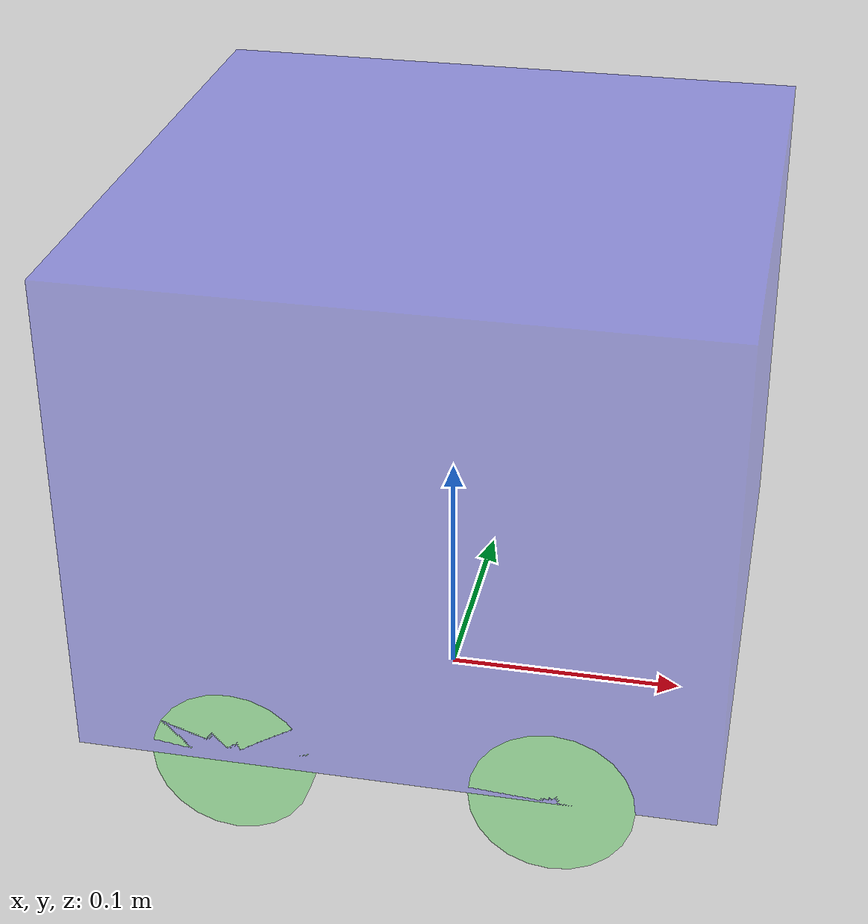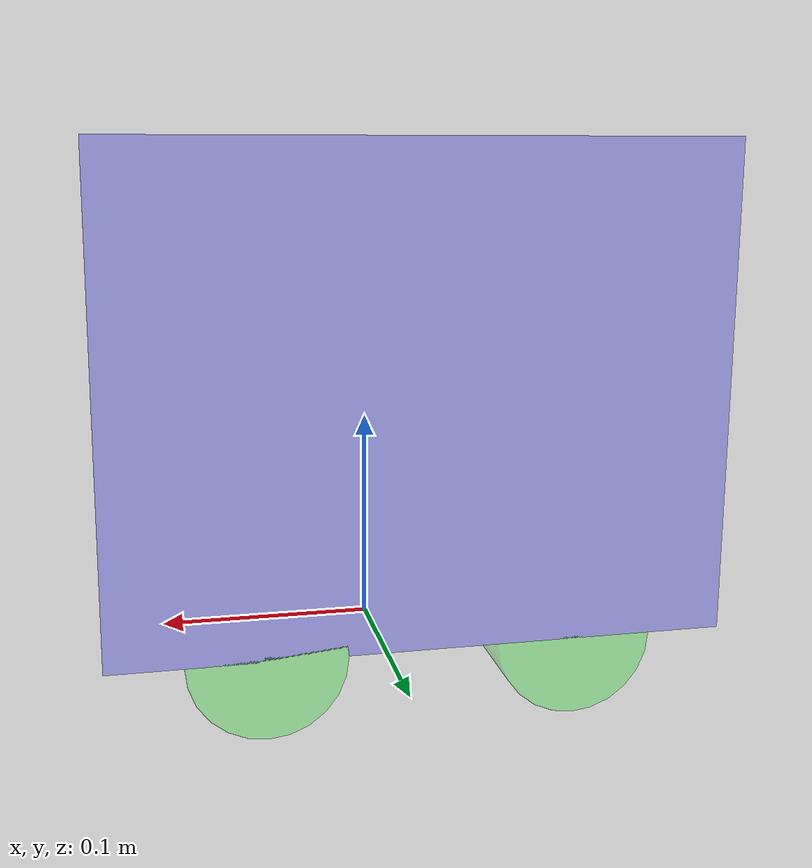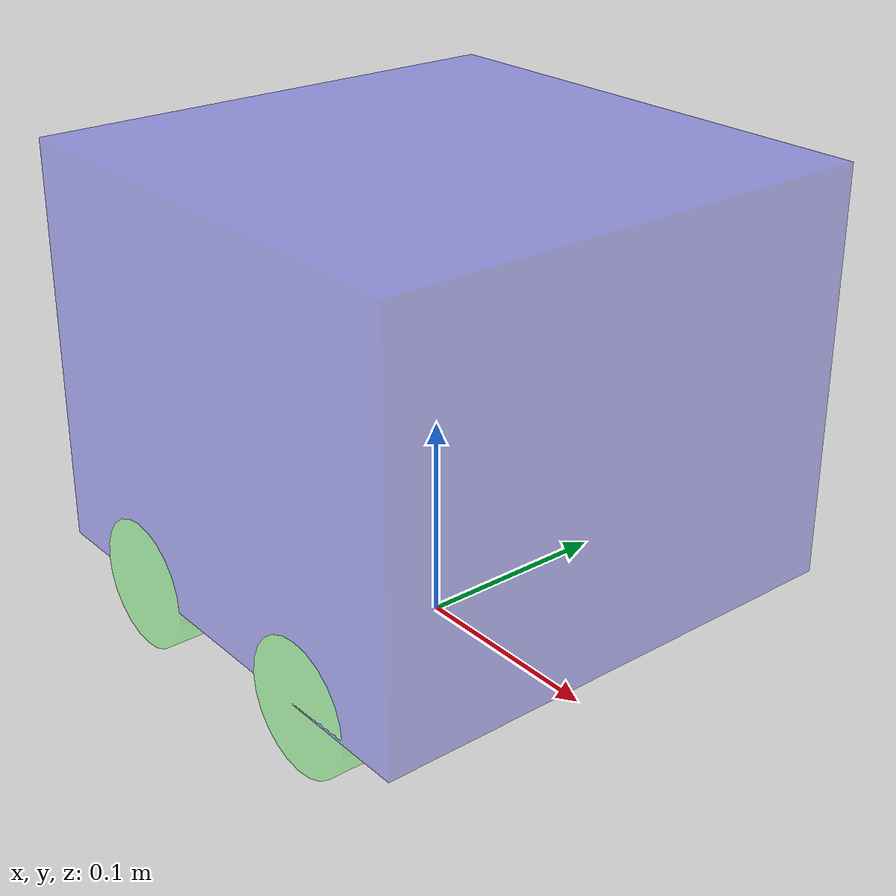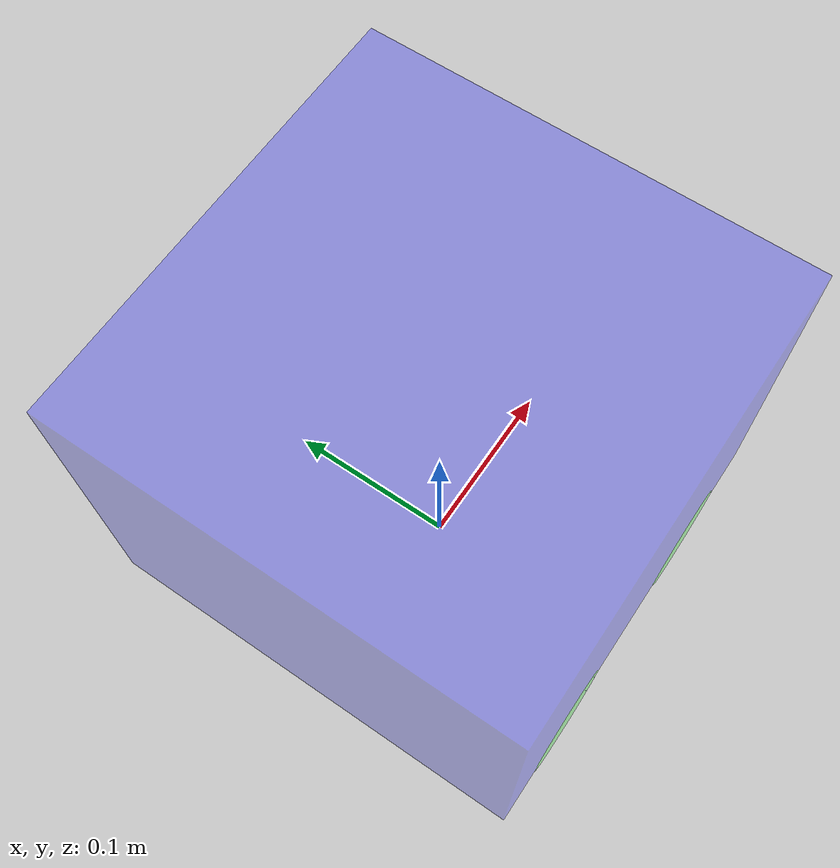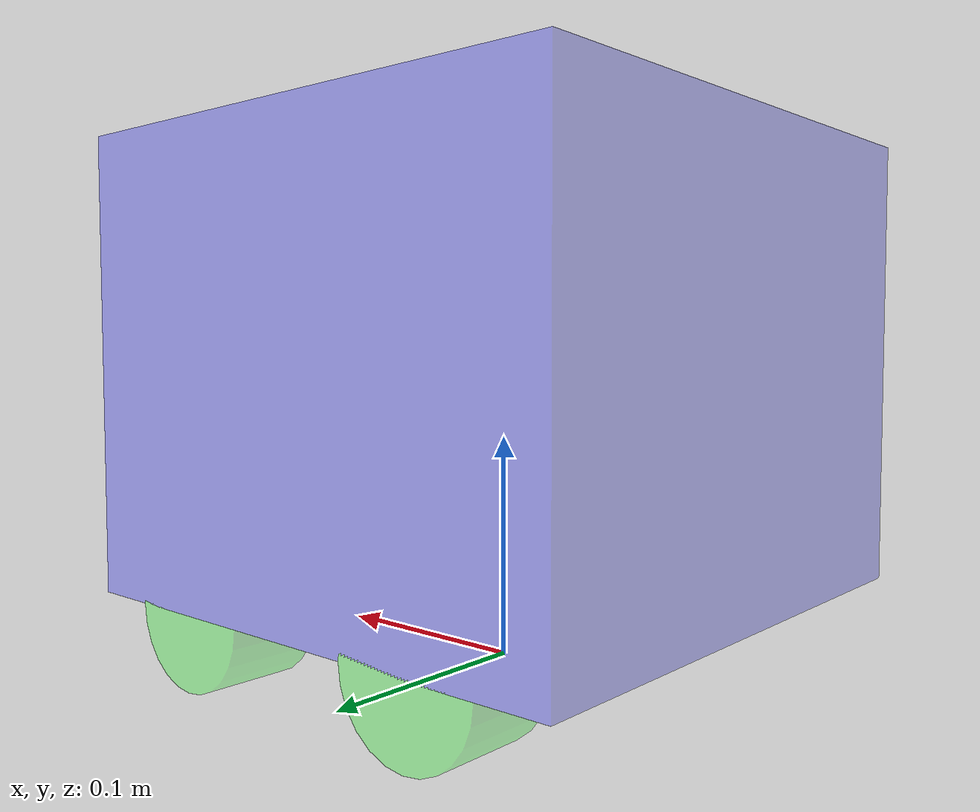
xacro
<?xml version="1.0"?>
<robot xmlns:xacro="http://www.ros.org/wiki/xacro" >

    <xacro:property name="base_length" value="0.25"/>
    <xacro:property name="base_width" value="0.25"/>
    <xacro:property name="base_height" value="0.20"/>
    <xacro:property name="wheel_radius" value="0.032"/>
    <xacro:property name="wheel_width" value="0.04"/>

    <!-- base-link -->
    <link name="base_footprint">
        <visual>
            <geometry>
               <sphere radius="0.0001"/>
            </geometry>
        </visual>
    </link>

    <link name="base_link">
        <visual>
            <geometry>
                <box size="${base_length} ${base_width} ${base_height}"/>
            </geometry>
            <material name="blue" >
                <color rgba="0.0 0.0 1.0 0.3"/>
            </material>
            <origin xyz="0.0 0.0 0.0" rpy="0.0 0.0 0.0"/>
        </visual>
        <collision>
                <geometry>
                    <box size="${base_length} ${base_width} ${base_height}"/>
                </geometry>
                <origin xyz="0.0 0.0 0.0" rpy="0.0 0.0 0.0"/>
        </collision>
        <xacro:box_inertia
            m="10.0"
            x="${base_length}" y="${base_width}" z="${base_height}"
            o_xyz="0.0 0.0 0.0"
            o_rpy="0.0 0.0 0.0"/>
    </link>

    <!-- wheels-macros -->
    <xacro:macro name="wheel_link" params="wheel_name">
        <link name="${wheel_name}">
            <visual>
                <geometry>
                    <cylinder radius="${wheel_radius}" length="${wheel_width}"/>
                </geometry>
                <material name="green" >
                    <color rgba="0.0 1.0 0.0 0.3"/>
                </material>
                <origin xyz="0.0 0.0 0.0" rpy="1.5708 0.0 0.0"/>
            </visual>
            <collision>
                <geometry>
                   <cylinder radius="${wheel_radius}" length="${wheel_width}"/>
                </geometry>
                <origin xyz="0.0 0.0 0.0" rpy="1.5708 0.0 0.0"/>

            </collision>
            <xacro:cylinder_inertia
                m="0.5"
                r="${wheel_radius}" l="${wheel_width}"
                o_xyz="0.0 0.0 0.0"
                o_rpy="1.5708 0.0 0.0"/>
        </link>
    </xacro:macro>

    <!-- wheel-links -->
    <xacro:wheel_link wheel_name="left_rear_wheel"/>
    <xacro:wheel_link wheel_name="right_rear_wheel"/>
    <xacro:wheel_link wheel_name="left_front_wheel"/>
    <xacro:wheel_link wheel_name="right_front_wheel"/>

    <!-- base_2_footprint_joint -->
    <joint name="base_footprint_joint" type="fixed">
        <parent link="base_footprint"/>
        <child link="base_link"/>
        <origin xyz="0.0 0.0 ${wheel_radius + (base_height)/2}" rpy="0.0 0.0 0.0"/>
    </joint>

    <!-- rear_left_wheel_joint -->
    <joint name="left_rear_wheel_joint" type="continuous">
        <parent link="base_link"/>
        <child link="left_rear_wheel"/>
        <origin xyz="${-(base_length/4)} ${(base_width - wheel_width)/2} -${base_height/2}" rpy="0.0 0.0 0.0"/>
        <axis xyz="0.0 1.0 0.0"/>
    </joint>

    <!-- rear_right_wheel_joint -->
    <joint name="right_rear_wheel_joint" type="continuous">
        <parent link="base_link"/>
        <child link="right_rear_wheel"/>
        <origin xyz="${-(base_length/4)} ${-(base_width - wheel_width)/2} -${base_height/2}" rpy="0.0 0.0 0.0"/>
        <axis xyz="0.0 1.0 0.0"/>
    </joint>

    <!-- front_left_wheel_joint -->
    <joint name="left_front_wheel_joint" type="continuous">
        <parent link="base_link"/>
        <child link="left_front_wheel"/>
        <origin xyz="${(base_length/4)} ${(base_width - wheel_width)/2} -${base_height/2}" rpy="0.0 0.0 0.0"/>
        <axis xyz="0.0 1.0 0.0"/>
    </joint>

    <!-- front_right_wheel_joint -->
    <joint name="right_front_wheel_joint" type="continuous">
        <parent link="base_link"/>
        <child link="right_front_wheel"/>
        <origin xyz="${(base_length/4)} ${-(base_width - wheel_width)/2} -${base_height/2}" rpy="0.0 0.0 0.0"/>
        <axis xyz="0.0 1.0 0.0"/>
    </joint>

</robot>
